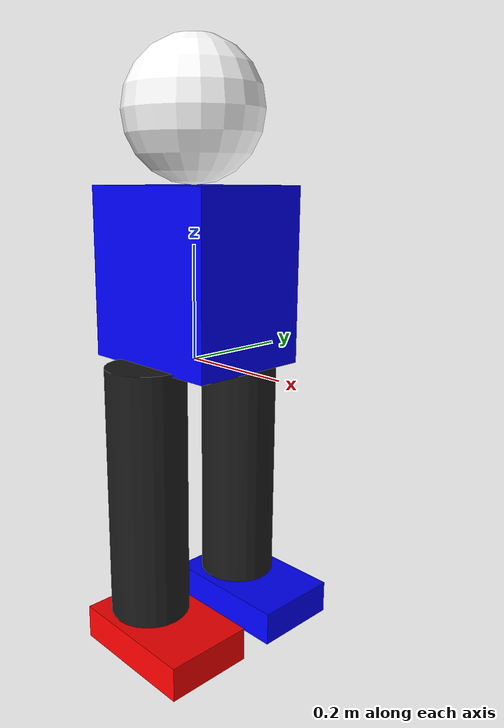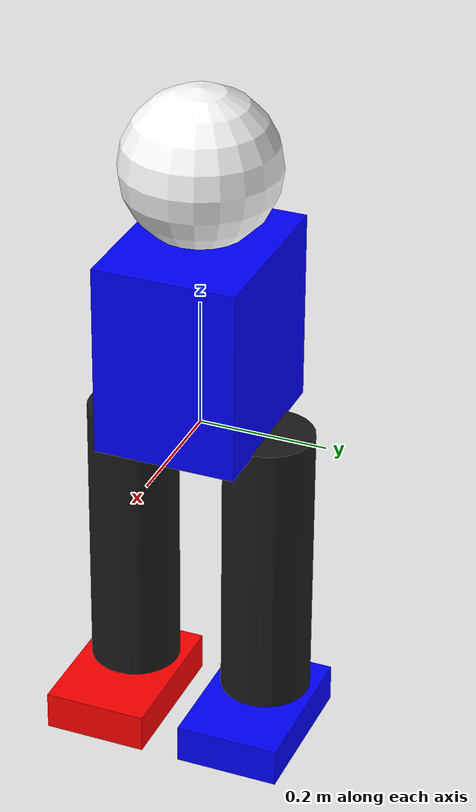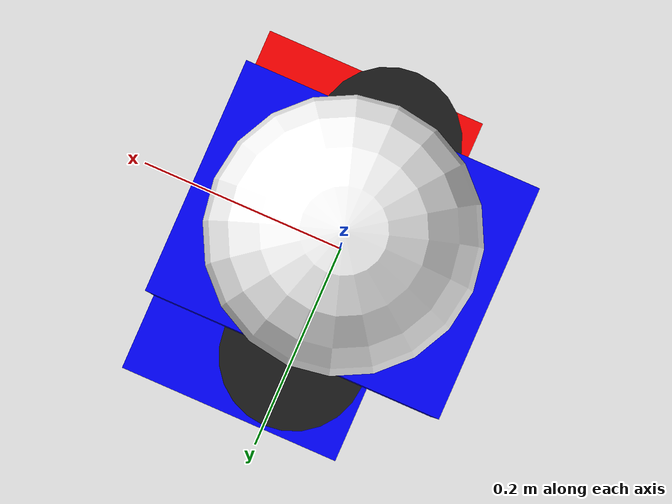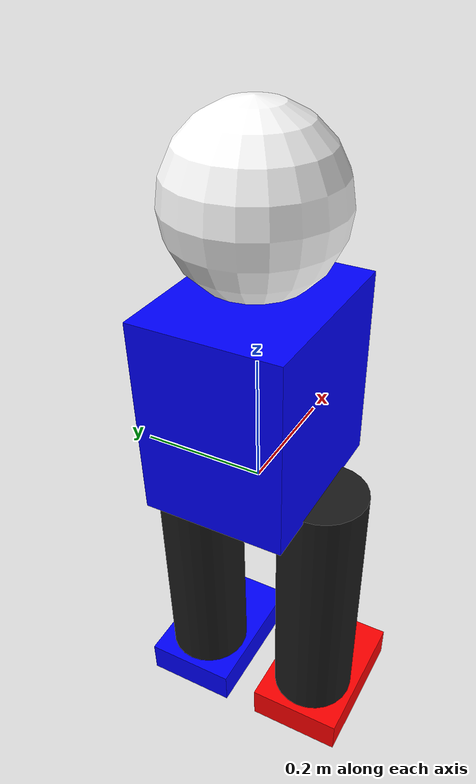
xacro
<?xml version="1.0"?>
<robot xmlns:xacro="http://www.ros.org/wiki/xacro" name="robot_blue">
  <xacro:property name="robot_color" value="blue"/>
  <xacro:property name="skin_color" value="white"/>
  <xacro:property name="robot_name" value="robot_blue"/>
  <xacro:include filename="$(find humanoid_football)/urdf/humanoid_robot.xacro"/>
</robot>

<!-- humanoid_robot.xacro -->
<robot xmlns:xacro="http://www.ros.org/wiki/xacro" name="humanoid_robot">

  <!-- MATERIALS -->

  <material name="blue">
    <color rgba="0 0 1 1"/>
  </material>

  <material name="red">
    <color rgba="1 0 0 1"/>
  </material>

  <material name="white">
    <color rgba="1 1 1 1"/>
  </material>

  <material name="black">
    <color rgba="0.1 0.1 0.1 1"/>
  </material>

  <!-- BASE / TORSO -->

  <link name="base_link">

    <visual>
      <origin xyz="0 0 0.15"/>

      <geometry>
        <box size="0.28 0.22 0.30"/>
      </geometry>

      <material name="${robot_color}"/>
    </visual>

    <collision>
      <origin xyz="0 0 0.15"/>

      <geometry>
        <box size="0.28 0.22 0.30"/>
      </geometry>
    </collision>

    <inertial>
      <!-- LOWER CENTER OF MASS -->
      <origin xyz="0 0 0.05"/>

      <mass value="5.0"/>

      <inertia
        ixx="0.15"
        ixy="0.0"
        ixz="0.0"
        iyy="0.15"
        iyz="0.0"
        izz="0.15"/>
    </inertial>

  </link>

  <!-- HEAD -->

  <link name="head">

    <visual>
      <geometry>
        <sphere radius="0.12"/>
      </geometry>

      <material name="white"/>
    </visual>

    <collision>
      <geometry>
        <sphere radius="0.12"/>
      </geometry>
    </collision>

    <inertial>
      <mass value="1.0"/>

      <inertia
        ixx="0.01"
        ixy="0"
        ixz="0"
        iyy="0.01"
        iyz="0"
        izz="0.01"/>
    </inertial>

  </link>

  <joint name="head_joint" type="fixed">
    <parent link="base_link"/>
    <child link="head"/>

    <origin xyz="0 0 0.42"/>
  </joint>

  <!-- LEFT LEG -->

  <link name="left_leg">

    <visual>
      <!-- IMPORTANT: NEGATIVE Z -->
      <origin xyz="0 0 -0.22"/>

      <geometry>
        <cylinder radius="0.07" length="0.45"/>
      </geometry>

      <material name="black"/>
    </visual>

    <collision>
      <origin xyz="0 0 -0.22"/>

      <geometry>
        <cylinder radius="0.07" length="0.45"/>
      </geometry>
    </collision>

    <inertial>
      <origin xyz="0 0 -0.22"/>

      <mass value="3.0"/>

      <inertia
        ixx="0.05"
        ixy="0"
        ixz="0"
        iyy="0.05"
        iyz="0"
        izz="0.02"/>
    </inertial>

  </link>

  <joint name="left_leg_joint" type="fixed">
    <parent link="base_link"/>
    <child link="left_leg"/>

    <origin xyz="0 0.11 0"/>
  </joint>

  <!-- LEFT FOOT -->

  <link name="left_foot">

    <visual>
      <origin xyz="0.04 0 -0.03"/>

      <geometry>
        <!-- BIGGER FEET -->
        <box size="0.24 0.16 0.06"/>
      </geometry>

      <material name="blue"/>
    </visual>

    <collision>
      <origin xyz="0.04 0 -0.03"/>

      <geometry>
        <box size="0.24 0.16 0.06"/>
      </geometry>
    </collision>

    <inertial>
      <mass value="2.0"/>

      <inertia
        ixx="0.02"
        ixy="0"
        ixz="0"
        iyy="0.02"
        iyz="0"
        izz="0.02"/>
    </inertial>

  </link>

  <joint name="left_foot_joint" type="fixed">
    <parent link="left_leg"/>
    <child link="left_foot"/>

    <origin xyz="0 0 -0.45"/>
  </joint>

  <!-- RIGHT LEG -->

  <link name="right_leg">

    <visual>
      <origin xyz="0 0 -0.22"/>

      <geometry>
        <cylinder radius="0.07" length="0.45"/>
      </geometry>

      <material name="black"/>
    </visual>

    <collision>
      <origin xyz="0 0 -0.22"/>

      <geometry>
        <cylinder radius="0.07" length="0.45"/>
      </geometry>
    </collision>

    <inertial>
      <origin xyz="0 0 -0.22"/>

      <mass value="3.0"/>

      <inertia
        ixx="0.05"
        ixy="0"
        ixz="0"
        iyy="0.05"
        iyz="0"
        izz="0.02"/>
    </inertial>

  </link>

  <joint name="right_leg_joint" type="fixed">
    <parent link="base_link"/>
    <child link="right_leg"/>

    <origin xyz="0 -0.11 0"/>
  </joint>

  <!-- RIGHT FOOT -->

  <link name="right_foot">

    <visual>
      <origin xyz="0.04 0 -0.03"/>

      <geometry>
        <box size="0.24 0.16 0.06"/>
      </geometry>

      <material name="red"/>
    </visual>

    <collision>
      <origin xyz="0.04 0 -0.03"/>

      <geometry>
        <box size="0.24 0.16 0.06"/>
      </geometry>
    </collision>

    <inertial>
      <mass value="2.0"/>

      <inertia
        ixx="0.02"
        ixy="0"
        ixz="0"
        iyy="0.02"
        iyz="0"
        izz="0.02"/>
    </inertial>

  </link>

  <joint name="right_foot_joint" type="fixed">
    <parent link="right_leg"/>
    <child link="right_foot"/>

    <origin xyz="0 0 -0.45"/>
  </joint>

  <!-- FOOT FRICTION -->

  <gazebo reference="left_foot">
    <mu1>0.1</mu1>
    <mu2>0.1</mu2>
    <kp>1000000.0</kp>
    <kd>100.0</kd>
  </gazebo>

  <gazebo reference="right_foot">
    <mu1>0.1</mu1>
    <mu2>0.1</mu2>
    <kp>1000000.0</kp>
    <kd>100.0</kd>
  </gazebo>

  <!-- PLANAR MOVE -->

  <gazebo>
    <plugin name="${robot_name}_planar_move"
            filename="libgazebo_ros_planar_move.so">

      <update_rate>50</update_rate>

      <command_topic>cmd_vel</command_topic>

      <odometry_topic>odom</odometry_topic>

      <odometry_frame>odom</odometry_frame>

      <robot_base_frame>base_link</robot_base_frame>

      <ros>
        <namespace>/${robot_name}</namespace>
      </ros>

    </plugin>
  </gazebo>

</robot>
